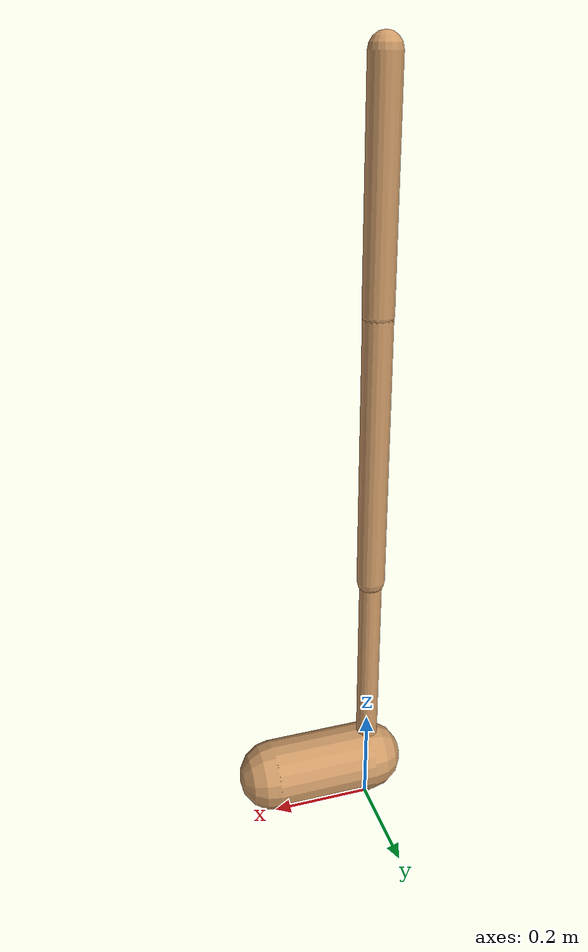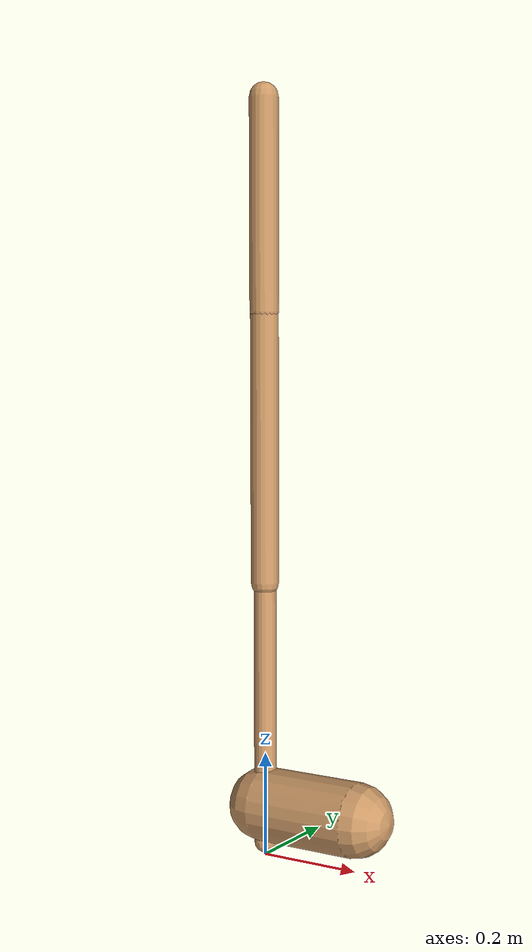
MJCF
<mujoco model="walker2d">
  <compiler angle="degree" coordinate="global" inertiafromgeom="true" />
  <default>
    <joint armature="0.01" damping=".1" limited="true" />
    <geom conaffinity="0" condim="3" contype="1" density="1000" friction="0.8 .1 .1" rgba="0.8 0.6 .4 1" />
  </default>
  <option integrator="RK4" timestep="0.002" />
  <worldbody>

    <body name="torso" pos="0 0 0.1413563047096023">
      <joint armature="0" axis="1 0 0" damping="0" limited="false" name="ignorex" pos="0 0 0" stiffness="0" type="slide" />
      <joint armature="0" axis="0 0 1" damping="0" limited="false" name="ignorez" pos="0 0 0" ref="1.25" stiffness="0" type="slide" />
      <joint armature="0" axis="0 1 0" damping="0" limited="false" name="ignorey" pos="0 0 0" stiffness="0" type="hinge" />
      <geom fromto="0 0 1.45 0 0 1.05" name="torso_geom" size="0.02793558557549234" type="capsule" />
      <body name="thigh">
        <joint axis="0 -1 0" name="thigh_joint" pos="0 0 1.05" range="-150 0" type="hinge" />
        <geom fromto="0.0 0.0 1.05 0.0 0.0 0.5330417504007147" name="thigh_geom" size="0.02692896637455705" type="capsule" />
        <body name="leg" pos="0.0 0.0 -0.06695824959928531">
          <joint axis="0 -1 0" name="leg_joint" pos="0 0 0.6" range="-150 0" type="hinge" />
          <geom fromto="0.0 0.0 0.6 0.0 0.0 0.02560194488968301" name="leg_geom" size="0.02154317309964564" type="capsule" />
          <body name="foot" pos="0.0 0.0 -0.074398055110317">
            <joint axis="0 -1 0" name="foot_joint" pos="0 0 0.1" range="-45 45" type="hinge" />
            <geom fromto="-0.0 0.0 0.1 0.20344394987843992 0.0 0.1" name="foot_geom" size="0.07077814462931062" type="capsule" />
          </body>
        </body>
      </body>

      <body name="thigh_left">
        <joint axis="0 -1 0" name="thigh_left_joint" pos="0 0 1.05" range="-150 0" type="hinge" />
        <geom fromto="0.0 0.0 1.05 0.0 0.0 0.5330417504007147" name="thigh_left_geom" rgba=".7 .3 .6 1" size="0.02692896637455705" type="capsule" />
        <body name="leg_left" pos="0.0 0.0 -0.06695824959928531">
          <joint axis="0 -1 0" name="leg_left_joint" pos="0 0 0.6" range="-150 0" type="hinge" />
          <geom fromto="0.0 0.0 0.6 0.0 0.0 0.02560194488968301" name="leg_left_geom" rgba=".7 .3 .6 1" size="0.02154317309964564" type="capsule" />
          <body name="foot_left" pos="0.0 0.0 -0.074398055110317">
            <joint axis="0 -1 0" name="foot_left_joint" pos="0 0 0.1" range="-45 45" type="hinge" />
            <geom fromto="-0.0 0.0 0.1 0.20344394987843992 0.0 0.1" name="foot_left_geom" rgba=".7 .3 .6 1" size="0.07077814462931062" type="capsule" />
          </body>
        </body>
      </body>
    </body>
  </worldbody>
  <actuator>

    <motor ctrllimited="true" ctrlrange="-1.0 1.0" gear="100" joint="thigh_joint" />
    <motor ctrllimited="true" ctrlrange="-1.0 1.0" gear="100" joint="leg_joint" />
    <motor ctrllimited="true" ctrlrange="-1.0 1.0" gear="100" joint="foot_joint" />
    <motor ctrllimited="true" ctrlrange="-1.0 1.0" gear="100" joint="thigh_left_joint" />
    <motor ctrllimited="true" ctrlrange="-1.0 1.0" gear="100" joint="leg_left_joint" />
    <motor ctrllimited="true" ctrlrange="-1.0 1.0" gear="100" joint="foot_left_joint" />

  </actuator>
</mujoco>
